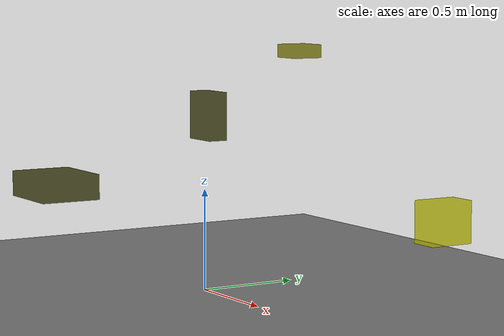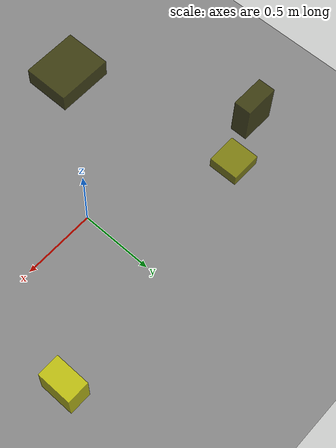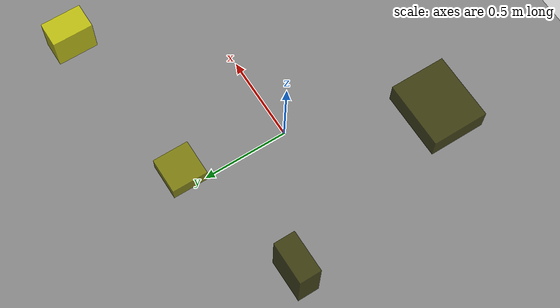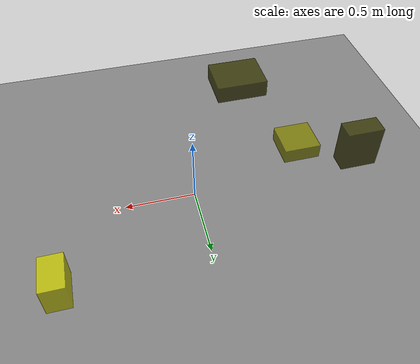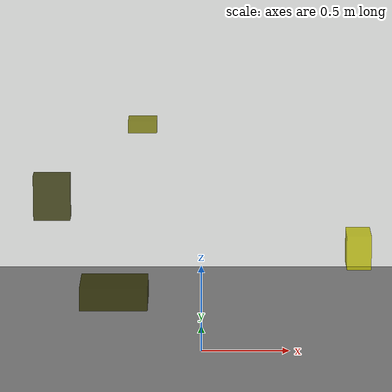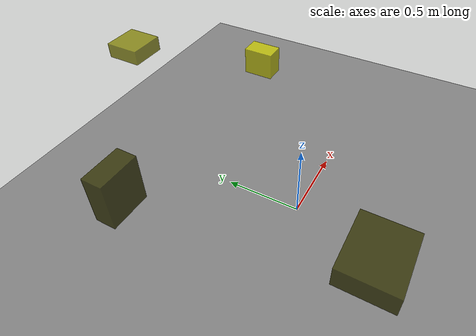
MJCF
<?xml version="1.0"?>
<mujoco model="obstacle_scene">
  <compiler angle="radian" coordinate="local"/>
  <option timestep="0.001" gravity="0 0 -9.81"/>

  <asset>
    <material name="obstacle_mat" rgba="0.8 0.8 0.0 0.8"/>
    <material name="ground_mat" rgba="0.5 0.5 0.5 1"/>
  </asset>

  <worldbody>
    <!-- Ground plane -->
    <geom name="ground" type="plane" size="3 3 0.1" material="ground_mat"/>

    <!-- Obstacles -->
    <body name="obstacle_0" pos="-0.864984 0.514917 0.777701">
      <geom name="obs_0" type="box" size="0.106005 0.054035 0.131560" rgba="0.2 0.2 0.0 0.8"/>
    </body>
    <body name="obstacle_1" pos="-0.342933 0.769940 1.147431">
      <geom name="obs_1" type="box" size="0.083189 0.082208 0.034925" rgba="0.5 0.5 0.0 0.8"/>
    </body>
    <body name="obstacle_2" pos="0.926413 0.755287 0.401495">
      <geom name="obs_2" type="box" size="0.071146 0.111358 0.102386" rgba="0.8 0.8 0.0 0.8"/>
    </body>
    <body name="obstacle_3" pos="-0.471287 -0.586219 0.508856">
      <geom name="obs_3" type="box" size="0.182529 0.151716 0.062950" rgba="0.2 0.2 0.0 0.8"/>
    </body>
  </worldbody>
</mujoco>
